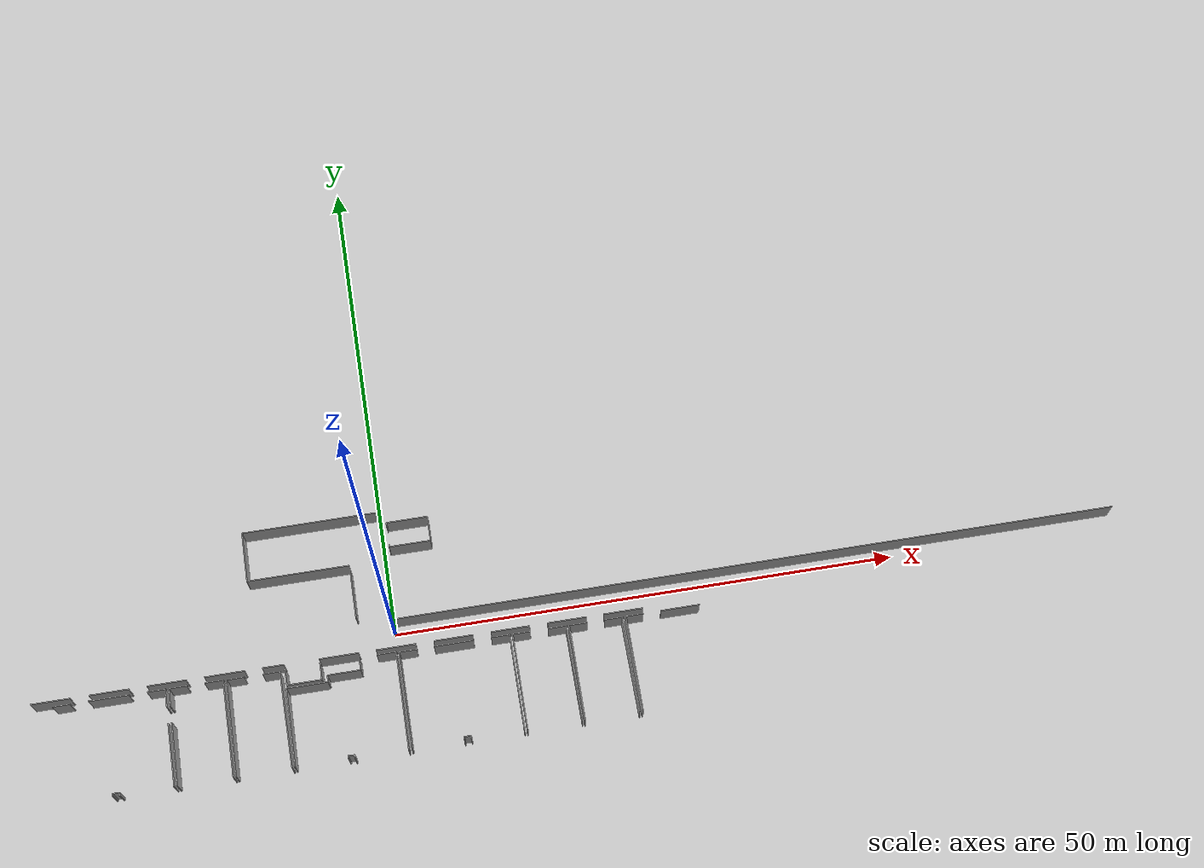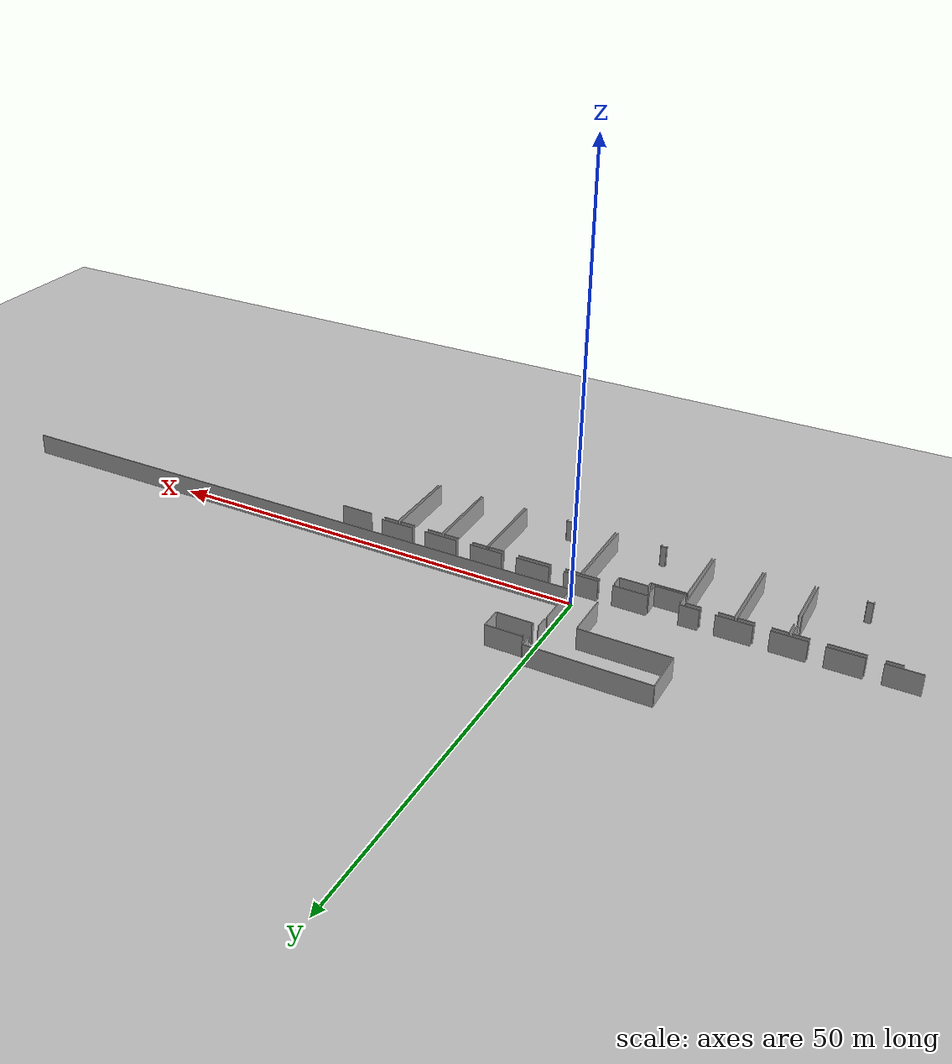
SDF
<sdf version="1.6">
 <world name="default">
  <model name="ground_plane">
   <static>1</static>
   <link name="link">
    <collision name="collision">
     <geometry><plane><normal>0 0 1</normal><size>100 100</size></plane></geometry>
     <surface><friction><ode><mu>100</mu><mu2>50</mu2></ode></friction></surface>
    </collision>
    <visual name="visual">
     <cast_shadows>0</cast_shadows>
     <geometry><plane><normal>0 0 1</normal><size>100 100</size></plane></geometry>
     <material>
      <script><uri>file://media/materials/scripts/gazebo.material</uri><name>Gazebo/Grey</name></script>
     </material>
    </visual>
   </link>
  </model>
  <model name="0510045906_A_40_1_104">
   <static>1</static>
   <link name="Wall_2">
    <collision name="Wall_2_Collision">
     <geometry><box><size>72.7622916997 0.1 2.5</size></box></geometry>
     <pose>36.3811458499 0 1.25 0 0 0</pose>
    </collision>
    <visual name="Wall_2_Visual">
     <pose>36.3811458499 0 1.25 0 0 0</pose>
     <geometry><box><size>72.7622916997 0.1 2.5</size></box></geometry>
     <material>
      <script><uri>file://media/materials/scripts/gazebo.material</uri><name>Gazebo/Grey</name></script>
      <ambient>1 1 1 1</ambient>
     </material>
    </visual>
    <pose>83.4841453738 -11.3094429456 0 0 0 0.0</pose>
   </link>
   <link name="Wall_12">
    <collision name="Wall_12_Collision">
     <geometry><box><size>3.91379146167 0.1 2.5</size></box></geometry>
     <pose>1.95689573084 0 1.25 0 0 0</pose>
    </collision>
    <visual name="Wall_12_Visual">
     <pose>1.95689573084 0 1.25 0 0 0</pose>
     <geometry><box><size>3.91379146167 0.1 2.5</size></box></geometry>
     <material>
      <script><uri>file://media/materials/scripts/gazebo.material</uri><name>Gazebo/Grey</name></script>
      <ambient>1 1 1 1</ambient>
     </material>
    </visual>
    <pose>108.021202984 -14.1445484844 0 0 0 3.14159265359</pose>
   </link>
   <link name="Wall_13">
    <collision name="Wall_13_Collision">
     <geometry><box><size>3.86173623234 0.1 2.5</size></box></geometry>
     <pose>1.93086811617 0 1.25 0 0 0</pose>
    </collision>
    <visual name="Wall_13_Visual">
     <pose>1.93086811617 0 1.25 0 0 0</pose>
     <geometry><box><size>3.86173623234 0.1 2.5</size></box></geometry>
     <material>
      <script><uri>file://media/materials/scripts/gazebo.material</uri><name>Gazebo/Grey</name></script>
      <ambient>1 1 1 1</ambient>
     </material>
    </visual>
    <pose>102.414473893 -14.1445484844 0 0 0 3.14159265359</pose>
   </link>
   <link name="Wall_14">
    <collision name="Wall_14_Collision">
     <geometry><box><size>3.8117124266 0.1 2.5</size></box></geometry>
     <pose>1.9058562133 0 1.25 0 0 0</pose>
    </collision>
    <visual name="Wall_14_Visual">
     <pose>1.9058562133 0 1.25 0 0 0</pose>
     <geometry><box><size>3.8117124266 0.1 2.5</size></box></geometry>
     <material>
      <script><uri>file://media/materials/scripts/gazebo.material</uri><name>Gazebo/Grey</name></script>
      <ambient>1 1 1 1</ambient>
     </material>
    </visual>
    <pose>96.7785430884 -14.1445484844 0 0 0 3.14159265359</pose>
   </link>
   <link name="Wall_15">
    <collision name="Wall_15_Collision">
     <geometry><box><size>3.86605300746 0.1 2.5</size></box></geometry>
     <pose>1.93302650373 0 1.25 0 0 0</pose>
    </collision>
    <visual name="Wall_15_Visual">
     <pose>1.93302650373 0 1.25 0 0 0</pose>
     <geometry><box><size>3.86605300746 0.1 2.5</size></box></geometry>
     <material>
      <script><uri>file://media/materials/scripts/gazebo.material</uri><name>Gazebo/Grey</name></script>
      <ambient>1 1 1 1</ambient>
     </material>
    </visual>
    <pose>91.1817171877 -14.1445484844 0 0 0 3.14159265359</pose>
   </link>
   <link name="Wall_16">
    <collision name="Wall_16_Collision">
     <geometry><box><size>3.89728614506 0.1 2.5</size></box></geometry>
     <pose>1.94864307253 0 1.25 0 0 0</pose>
    </collision>
    <visual name="Wall_16_Visual">
     <pose>1.94864307253 0 1.25 0 0 0</pose>
     <geometry><box><size>3.89728614506 0.1 2.5</size></box></geometry>
     <material>
      <script><uri>file://media/materials/scripts/gazebo.material</uri><name>Gazebo/Grey</name></script>
      <ambient>1 1 1 1</ambient>
     </material>
    </visual>
    <pose>85.5701634661 -14.1445484844 0 0 0 3.14159265359</pose>
   </link>
   <link name="Wall_17">
    <collision name="Wall_17_Collision">
     <geometry><box><size>3.87519441359 0.1 2.5</size></box></geometry>
     <pose>1.93759720679 0 1.25 0 0 0</pose>
    </collision>
    <visual name="Wall_17_Visual">
     <pose>1.93759720679 0 1.25 0 0 0</pose>
     <geometry><box><size>3.87519441359 0.1 2.5</size></box></geometry>
     <material>
      <script><uri>file://media/materials/scripts/gazebo.material</uri><name>Gazebo/Grey</name></script>
      <ambient>1 1 1 1</ambient>
     </material>
    </visual>
    <pose>79.9822250436 -14.1445484844 0 0 0 3.14159265359</pose>
   </link>
   <link name="Wall_18">
    <collision name="Wall_18_Collision">
     <geometry><box><size>2.12106014918 0.1 2.5</size></box></geometry>
     <pose>1.06053007459 0 1.25 0 0 0</pose>
    </collision>
    <visual name="Wall_18_Visual">
     <pose>1.06053007459 0 1.25 0 0 0</pose>
     <geometry><box><size>2.12106014918 0.1 2.5</size></box></geometry>
     <material>
      <script><uri>file://media/materials/scripts/gazebo.material</uri><name>Gazebo/Grey</name></script>
      <ambient>1 1 1 1</ambient>
     </material>
    </visual>
    <pose>72.6594508808 -14.1445484844 0 0 0 3.14159265359</pose>
   </link>
   <link name="Wall_19">
    <collision name="Wall_19_Collision">
     <geometry><box><size>3.90236470402 0.1 2.5</size></box></geometry>
     <pose>1.95118235201 0 1.25 0 0 0</pose>
    </collision>
    <visual name="Wall_19_Visual">
     <pose>1.95118235201 0 1.25 0 0 0</pose>
     <geometry><box><size>3.90236470402 0.1 2.5</size></box></geometry>
     <material>
      <script><uri>file://media/materials/scripts/gazebo.material</uri><name>Gazebo/Grey</name></script>
      <ambient>1 1 1 1</ambient>
     </material>
    </visual>
    <pose>68.8479923822 -14.1445484844 0 0 0 3.14159265359</pose>
   </link>
   <link name="Wall_20">
    <collision name="Wall_20_Collision">
     <geometry><box><size>3.81272813839 0.1 2.5</size></box></geometry>
     <pose>1.9063640692 0 1.25 0 0 0</pose>
    </collision>
    <visual name="Wall_20_Visual">
     <pose>1.9063640692 0 1.25 0 0 0</pose>
     <geometry><box><size>3.81272813839 0.1 2.5</size></box></geometry>
     <material>
      <script><uri>file://media/materials/scripts/gazebo.material</uri><name>Gazebo/Grey</name></script>
      <ambient>1 1 1 1</ambient>
     </material>
    </visual>
    <pose>63.1782891605 -14.1445484844 0 0 0 3.14159265359</pose>
   </link>
   <link name="Wall_21">
    <collision name="Wall_21_Collision">
     <geometry><box><size>3.87341691795 0.1 2.5</size></box></geometry>
     <pose>1.93670845897 0 1.25 0 0 0</pose>
    </collision>
    <visual name="Wall_21_Visual">
     <pose>1.93670845897 0 1.25 0 0 0</pose>
     <geometry><box><size>3.87341691795 0.1 2.5</size></box></geometry>
     <material>
      <script><uri>file://media/materials/scripts/gazebo.material</uri><name>Gazebo/Grey</name></script>
      <ambient>1 1 1 1</ambient>
     </material>
    </visual>
    <pose>57.6401206158 -14.1445484844 0 0 0 3.14159265359</pose>
   </link>
   <link name="Wall_22">
    <collision name="Wall_22_Collision">
     <geometry><box><size>3.79825424536 0.1 2.5</size></box></geometry>
     <pose>1.89912712268 0 1.25 0 0 0</pose>
    </collision>
    <visual name="Wall_22_Visual">
     <pose>1.89912712268 0 1.25 0 0 0</pose>
     <geometry><box><size>3.79825424536 0.1 2.5</size></box></geometry>
     <material>
      <script><uri>file://media/materials/scripts/gazebo.material</uri><name>Gazebo/Grey</name></script>
      <ambient>1 1 1 1</ambient>
     </material>
    </visual>
    <pose>51.9772734487 -14.1445484844 0 0 0 3.14159265359</pose>
   </link>
   <link name="Wall_92">
    <collision name="Wall_92_Collision">
     <geometry><box><size>0.28414537375 0.1 2.5</size></box></geometry>
     <pose>0.142072686875 0 1.25 0 0 0</pose>
    </collision>
    <visual name="Wall_92_Visual">
     <pose>0.142072686875 0 1.25 0 0 0</pose>
     <geometry><box><size>0.28414537375 0.1 2.5</size></box></geometry>
     <material>
      <script><uri>file://media/materials/scripts/gazebo.material</uri><name>Gazebo/Grey</name></script>
      <ambient>1 1 1 1</ambient>
     </material>
    </visual>
    <pose>56.0010157118 -24.3473734328 0 0 0 1.57079632679</pose>
   </link>
   <link name="Wall_93">
    <collision name="Wall_93_Collision">
     <geometry><box><size>0.649547690843 0.1 2.5</size></box></geometry>
     <pose>0.324773845421 0 1.25 0 0 0</pose>
    </collision>
    <visual name="Wall_93_Visual">
     <pose>0.324773845421 0 1.25 0 0 0</pose>
     <geometry><box><size>0.649547690843 0.1 2.5</size></box></geometry>
     <material>
      <script><uri>file://media/materials/scripts/gazebo.material</uri><name>Gazebo/Grey</name></script>
      <ambient>1 1 1 1</ambient>
     </material>
    </visual>
    <pose>56.0010157118 -24.063228059 0 0 0 3.14159265359</pose>
   </link>
   <link name="Wall_94">
    <collision name="Wall_94_Collision">
     <geometry><box><size>0.252658308205 0.1 2.5</size></box></geometry>
     <pose>0.126329154103 0 1.25 0 0 0</pose>
    </collision>
    <visual name="Wall_94_Visual">
     <pose>0.126329154103 0 1.25 0 0 0</pose>
     <geometry><box><size>0.252658308205 0.1 2.5</size></box></geometry>
     <material>
      <script><uri>file://media/materials/scripts/gazebo.material</uri><name>Gazebo/Grey</name></script>
      <ambient>1 1 1 1</ambient>
     </material>
    </visual>
    <pose>55.3514680209 -24.063228059 0 0 0 -1.57079632679</pose>
   </link>
   <link name="Wall_96">
    <collision name="Wall_96_Collision">
     <geometry><box><size>1.70334867481 0.1 2.5</size></box></geometry>
     <pose>0.851674337407 0 1.25 0 0 0</pose>
    </collision>
    <visual name="Wall_96_Visual">
     <pose>0.851674337407 0 1.25 0 0 0</pose>
     <geometry><box><size>1.70334867481 0.1 2.5</size></box></geometry>
     <material>
      <script><uri>file://media/materials/scripts/gazebo.material</uri><name>Gazebo/Grey</name></script>
      <ambient>1 1 1 1</ambient>
     </material>
    </visual>
    <pose>50.2556419616 -14.7085224568 0 0 0 0.0</pose>
   </link>
   <link name="Wall_97">
    <collision name="Wall_97_Collision">
     <geometry><box><size>3.88789081098 0.1 2.5</size></box></geometry>
     <pose>1.94394540549 0 1.25 0 0 0</pose>
    </collision>
    <visual name="Wall_97_Visual">
     <pose>1.94394540549 0 1.25 0 0 0</pose>
     <geometry><box><size>3.88789081098 0.1 2.5</size></box></geometry>
     <material>
      <script><uri>file://media/materials/scripts/gazebo.material</uri><name>Gazebo/Grey</name></script>
      <ambient>1 1 1 1</ambient>
     </material>
    </visual>
    <pose>53.7202348834 -14.7085224568 0 0 0 0.0</pose>
   </link>
   <link name="Wall_98">
    <collision name="Wall_98_Collision">
     <geometry><box><size>1.75311855261 0.1 2.5</size></box></geometry>
     <pose>0.876559276305 0 1.25 0 0 0</pose>
    </collision>
    <visual name="Wall_98_Visual">
     <pose>0.876559276305 0 1.25 0 0 0</pose>
     <geometry><box><size>1.75311855261 0.1 2.5</size></box></geometry>
     <material>
      <script><uri>file://media/materials/scripts/gazebo.material</uri><name>Gazebo/Grey</name></script>
      <ambient>1 1 1 1</ambient>
     </material>
    </visual>
    <pose>59.3457546421 -14.7085224568 0 0 0 0.0</pose>
   </link>
   <link name="Wall_99">
    <collision name="Wall_99_Collision">
     <geometry><box><size>1.78866846532 0.1 2.5</size></box></geometry>
     <pose>0.894334232661 0 1.25 0 0 0</pose>
    </collision>
    <visual name="Wall_99_Visual">
     <pose>0.894334232661 0 1.25 0 0 0</pose>
     <geometry><box><size>1.78866846532 0.1 2.5</size></box></geometry>
     <material>
      <script><uri>file://media/materials/scripts/gazebo.material</uri><name>Gazebo/Grey</name></script>
      <ambient>1 1 1 1</ambient>
     </material>
    </visual>
    <pose>61.0988731947 -14.7085224568 0 0 0 -1.57079632679</pose>
   </link>
   <link name="Wall_100">
    <collision name="Wall_100_Collision">
     <geometry><box><size>6.25143440466 0.1 2.5</size></box></geometry>
     <pose>3.12571720233 0 1.25 0 0 0</pose>
    </collision>
    <visual name="Wall_100_Visual">
     <pose>3.12571720233 0 1.25 0 0 0</pose>
     <geometry><box><size>6.25143440466 0.1 2.5</size></box></geometry>
     <material>
      <script><uri>file://media/materials/scripts/gazebo.material</uri><name>Gazebo/Grey</name></script>
      <ambient>1 1 1 1</ambient>
     </material>
    </visual>
    <pose>61.0988731947 -18.0961752103 0 0 0 -1.56210371936</pose>
   </link>
   <link name="Wall_101">
    <collision name="Wall_101_Collision">
     <geometry><box><size>6.21310903031 0.1 2.5</size></box></geometry>
     <pose>3.10655451516 0 1.25 0 0 0</pose>
    </collision>
    <visual name="Wall_101_Visual">
     <pose>3.10655451516 0 1.25 0 0 0</pose>
     <geometry><box><size>6.21310903031 0.1 2.5</size></box></geometry>
     <material>
      <script><uri>file://media/materials/scripts/gazebo.material</uri><name>Gazebo/Grey</name></script>
      <ambient>1 1 1 1</ambient>
     </material>
    </visual>
    <pose>61.4457387716 -24.3207109983 0 0 0 1.57079632679</pose>
   </link>
   <link name="Wall_102">
    <collision name="Wall_102_Collision">
     <geometry><box><size>1.81152198064 0.1 2.5</size></box></geometry>
     <pose>0.905760990319 0 1.25 0 0 0</pose>
    </collision>
    <visual name="Wall_102_Visual">
     <pose>0.905760990319 0 1.25 0 0 0</pose>
     <geometry><box><size>1.81152198064 0.1 2.5</size></box></geometry>
     <material>
      <script><uri>file://media/materials/scripts/gazebo.material</uri><name>Gazebo/Grey</name></script>
      <ambient>1 1 1 1</ambient>
     </material>
    </visual>
    <pose>61.4457387716 -16.526900492 0 0 0 1.57079632679</pose>
   </link>
   <link name="Wall_103">
    <collision name="Wall_103_Collision">
     <geometry><box><size>1.74677035391 0.1 2.5</size></box></geometry>
     <pose>0.873385176956 0 1.25 0 0 0</pose>
    </collision>
    <visual name="Wall_103_Visual">
     <pose>0.873385176956 0 1.25 0 0 0</pose>
     <geometry><box><size>1.74677035391 0.1 2.5</size></box></geometry>
     <material>
      <script><uri>file://media/materials/scripts/gazebo.material</uri><name>Gazebo/Grey</name></script>
      <ambient>1 1 1 1</ambient>
     </material>
    </visual>
    <pose>61.4457387716 -14.7153785113 0 0 0 0.0</pose>
   </link>
   <link name="Wall_104">
    <collision name="Wall_104_Collision">
     <geometry><box><size>1.80491985399 0.1 2.5</size></box></geometry>
     <pose>0.902459926996 0 1.25 0 0 0</pose>
    </collision>
    <visual name="Wall_104_Visual">
     <pose>0.902459926996 0 1.25 0 0 0</pose>
     <geometry><box><size>1.80491985399 0.1 2.5</size></box></geometry>
     <material>
      <script><uri>file://media/materials/scripts/gazebo.material</uri><name>Gazebo/Grey</name></script>
      <ambient>1 1 1 1</ambient>
     </material>
    </visual>
    <pose>64.8978892239 -14.7153785113 0 0 0 0.0</pose>
   </link>
   <link name="Wall_105">
    <collision name="Wall_105_Collision">
     <geometry><box><size>9.60546540428 0.1 2.5</size></box></geometry>
     <pose>4.80273270214 0 1.25 0 0 0</pose>
    </collision>
    <visual name="Wall_105_Visual">
     <pose>4.80273270214 0 1.25 0 0 0</pose>
     <geometry><box><size>9.60546540428 0.1 2.5</size></box></geometry>
     <material>
      <script><uri>file://media/materials/scripts/gazebo.material</uri><name>Gazebo/Grey</name></script>
      <ambient>1 1 1 1</ambient>
     </material>
    </visual>
    <pose>66.7028090779 -14.7153785113 0 0 0 -1.56553558277</pose>
   </link>
   <link name="Wall_106">
    <collision name="Wall_106_Collision">
     <geometry><box><size>9.5936518013 0.1 2.5</size></box></geometry>
     <pose>4.79682590065 0 1.25 0 0 0</pose>
    </collision>
    <visual name="Wall_106_Visual">
     <pose>4.79682590065 0 1.25 0 0 0</pose>
     <geometry><box><size>9.5936518013 0.1 2.5</size></box></geometry>
     <material>
      <script><uri>file://media/materials/scripts/gazebo.material</uri><name>Gazebo/Grey</name></script>
      <ambient>1 1 1 1</ambient>
     </material>
    </visual>
    <pose>67.0301222028 -24.3397555944 0 0 0 1.57079632679</pose>
   </link>
   <link name="Wall_107">
    <collision name="Wall_107_Collision">
     <geometry><box><size>1.71477543247 0.1 2.5</size></box></geometry>
     <pose>0.857387716236 0 1.25 0 0 0</pose>
    </collision>
    <visual name="Wall_107_Visual">
     <pose>0.857387716236 0 1.25 0 0 0</pose>
     <geometry><box><size>1.71477543247 0.1 2.5</size></box></geometry>
     <material>
      <script><uri>file://media/materials/scripts/gazebo.material</uri><name>Gazebo/Grey</name></script>
      <ambient>1 1 1 1</ambient>
     </material>
    </visual>
    <pose>67.0301222028 -14.746103793 0 0 0 0.0</pose>
   </link>
   <link name="Wall_108">
    <collision name="Wall_108_Collision">
     <geometry><box><size>1.67947944771 0.1 2.5</size></box></geometry>
     <pose>0.839739723853 0 1.25 0 0 0</pose>
    </collision>
    <visual name="Wall_108_Visual">
     <pose>0.839739723853 0 1.25 0 0 0</pose>
     <geometry><box><size>1.67947944771 0.1 2.5</size></box></geometry>
     <material>
      <script><uri>file://media/materials/scripts/gazebo.material</uri><name>Gazebo/Grey</name></script>
      <ambient>1 1 1 1</ambient>
     </material>
    </visual>
    <pose>70.5193461355 -14.746103793 0 0 0 0.0</pose>
   </link>
   <link name="Wall_109">
    <collision name="Wall_109_Collision">
     <geometry><box><size>9.59495184635 0.1 2.5</size></box></geometry>
     <pose>4.79747592318 0 1.25 0 0 0</pose>
    </collision>
    <visual name="Wall_109_Visual">
     <pose>4.79747592318 0 1.25 0 0 0</pose>
     <geometry><box><size>9.59495184635 0.1 2.5</size></box></geometry>
     <material>
      <script><uri>file://media/materials/scripts/gazebo.material</uri><name>Gazebo/Grey</name></script>
      <ambient>1 1 1 1</ambient>
     </material>
    </visual>
    <pose>72.1988255832 -14.746103793 0 0 0 -1.5543345123</pose>
   </link>
   <link name="Wall_110">
    <collision name="Wall_110_Collision">
     <geometry><box><size>0.284653229646 0.1 2.5</size></box></geometry>
     <pose>0.142326614823 0 1.25 0 0 0</pose>
    </collision>
    <visual name="Wall_110_Visual">
     <pose>0.142326614823 0 1.25 0 0 0</pose>
     <geometry><box><size>0.284653229646 0.1 2.5</size></box></geometry>
     <material>
      <script><uri>file://media/materials/scripts/gazebo.material</uri><name>Gazebo/Grey</name></script>
      <ambient>1 1 1 1</ambient>
     </material>
    </visual>
    <pose>78.3784161244 -24.3648944612 0 0 0 1.57079632679</pose>
   </link>
   <link name="Wall_111">
    <collision name="Wall_111_Collision">
     <geometry><box><size>0.608919219172 0.1 2.5</size></box></geometry>
     <pose>0.304459609586 0 1.25 0 0 0</pose>
    </collision>
    <visual name="Wall_111_Visual">
     <pose>0.304459609586 0 1.25 0 0 0</pose>
     <geometry><box><size>0.608919219172 0.1 2.5</size></box></geometry>
     <material>
      <script><uri>file://media/materials/scripts/gazebo.material</uri><name>Gazebo/Grey</name></script>
      <ambient>1 1 1 1</ambient>
     </material>
    </visual>
    <pose>78.3784161244 -24.0802412316 0 0 0 3.14159265359</pose>
   </link>
   <link name="Wall_112">
    <collision name="Wall_112_Collision">
     <geometry><box><size>0.253420092049 0.1 2.5</size></box></geometry>
     <pose>0.126710046024 0 1.25 0 0 0</pose>
    </collision>
    <visual name="Wall_112_Visual">
     <pose>0.126710046024 0 1.25 0 0 0</pose>
     <geometry><box><size>0.253420092049 0.1 2.5</size></box></geometry>
     <material>
      <script><uri>file://media/materials/scripts/gazebo.material</uri><name>Gazebo/Grey</name></script>
      <ambient>1 1 1 1</ambient>
     </material>
    </visual>
    <pose>77.7694969053 -24.0802412316 0 0 0 -1.57079632679</pose>
   </link>
   <link name="Wall_113">
    <collision name="Wall_113_Collision">
     <geometry><box><size>7.78492302809 0.1 2.5</size></box></geometry>
     <pose>3.89246151405 0 1.25 0 0 0</pose>
    </collision>
    <visual name="Wall_113_Visual">
     <pose>3.89246151405 0 1.25 0 0 0</pose>
     <geometry><box><size>7.78492302809 0.1 2.5</size></box></geometry>
     <material>
      <script><uri>file://media/materials/scripts/gazebo.material</uri><name>Gazebo/Grey</name></script>
      <ambient>1 1 1 1</ambient>
     </material>
    </visual>
    <pose>72.6477701952 -24.3336613236 0 0 0 1.57079632679</pose>
   </link>
   <link name="Wall_114">
    <collision name="Wall_114_Collision">
     <geometry><box><size>4.0521821933 0.1 2.5</size></box></geometry>
     <pose>2.02609109665 0 1.25 0 0 0</pose>
    </collision>
    <visual name="Wall_114_Visual">
     <pose>2.02609109665 0 1.25 0 0 0</pose>
     <geometry><box><size>4.0521821933 0.1 2.5</size></box></geometry>
     <material>
      <script><uri>file://media/materials/scripts/gazebo.material</uri><name>Gazebo/Grey</name></script>
      <ambient>1 1 1 1</ambient>
     </material>
    </visual>
    <pose>72.6477701952 -16.5487382955 0 0 0 0.0</pose>
   </link>
   <link name="Wall_115">
    <collision name="Wall_115_Collision">
     <geometry><box><size>0.66960799873 0.1 2.5</size></box></geometry>
     <pose>0.334803999365 0 1.25 0 0 0</pose>
    </collision>
    <visual name="Wall_115_Visual">
     <pose>0.334803999365 0 1.25 0 0 0</pose>
     <geometry><box><size>0.66960799873 0.1 2.5</size></box></geometry>
     <material>
      <script><uri>file://media/materials/scripts/gazebo.material</uri><name>Gazebo/Grey</name></script>
      <ambient>1 1 1 1</ambient>
     </material>
    </visual>
    <pose>76.6999523885 -16.5487382955 0 0 0 1.57079632679</pose>
   </link>
   <link name="Wall_116">
    <collision name="Wall_116_Collision">
     <geometry><box><size>3.2492620219 0.1 2.5</size></box></geometry>
     <pose>1.62463101095 0 1.25 0 0 0</pose>
    </collision>
    <visual name="Wall_116_Visual">
     <pose>1.62463101095 0 1.25 0 0 0</pose>
     <geometry><box><size>3.2492620219 0.1 2.5</size></box></geometry>
     <material>
      <script><uri>file://media/materials/scripts/gazebo.material</uri><name>Gazebo/Grey</name></script>
      <ambient>1 1 1 1</ambient>
     </material>
    </visual>
    <pose>76.6999523885 -15.8791302968 0 0 0 0.0</pose>
   </link>
   <link name="Wall_117">
    <collision name="Wall_117_Collision">
     <geometry><box><size>1.26252975718 0.1 2.5</size></box></geometry>
     <pose>0.631264878591 0 1.25 0 0 0</pose>
    </collision>
    <visual name="Wall_117_Visual">
     <pose>0.631264878591 0 1.25 0 0 0</pose>
     <geometry><box><size>1.26252975718 0.1 2.5</size></box></geometry>
     <material>
      <script><uri>file://media/materials/scripts/gazebo.material</uri><name>Gazebo/Grey</name></script>
      <ambient>1 1 1 1</ambient>
     </material>
    </visual>
    <pose>79.9492144104 -15.8791302968 0 0 0 1.57079632679</pose>
   </link>
   <link name="Wall_118">
    <collision name="Wall_118_Collision">
     <geometry><box><size>1.90445960959 0.1 2.5</size></box></geometry>
     <pose>0.952229804793 0 1.25 0 0 0</pose>
    </collision>
    <visual name="Wall_118_Visual">
     <pose>0.952229804793 0 1.25 0 0 0</pose>
     <geometry><box><size>1.90445960959 0.1 2.5</size></box></geometry>
     <material>
      <script><uri>file://media/materials/scripts/gazebo.material</uri><name>Gazebo/Grey</name></script>
      <ambient>1 1 1 1</ambient>
     </material>
    </visual>
    <pose>81.663481987 -14.6166005396 0 0 0 0.0</pose>
   </link>
   <link name="Wall_119">
    <collision name="Wall_119_Collision">
     <geometry><box><size>9.74837033119 0.1 2.5</size></box></geometry>
     <pose>4.87418516559 0 1.25 0 0 0</pose>
    </collision>
    <visual name="Wall_119_Visual">
     <pose>4.87418516559 0 1.25 0 0 0</pose>
     <geometry><box><size>9.74837033119 0.1 2.5</size></box></geometry>
     <material>
      <script><uri>file://media/materials/scripts/gazebo.material</uri><name>Gazebo/Grey</name></script>
      <ambient>1 1 1 1</ambient>
     </material>
    </visual>
    <pose>83.5679415966 -14.6166005396 0 0 0 -1.57475567052</pose>
   </link>
   <link name="Wall_120">
    <collision name="Wall_120_Collision">
     <geometry><box><size>3.39196952865 0.1 2.5</size></box></geometry>
     <pose>1.69598476432 0 1.25 0 0 0</pose>
    </collision>
    <visual name="Wall_120_Visual">
     <pose>1.69598476432 0 1.25 0 0 0</pose>
     <geometry><box><size>3.39196952865 0.1 2.5</size></box></geometry>
     <material>
      <script><uri>file://media/materials/scripts/gazebo.material</uri><name>Gazebo/Grey</name></script>
      <ambient>1 1 1 1</ambient>
     </material>
    </visual>
    <pose>72.7368989049 -16.2305665767 0 0 0 0.0</pose>
   </link>
   <link name="Wall_121">
    <collision name="Wall_121_Collision">
     <geometry><box><size>1.67973337565 0.1 2.5</size></box></geometry>
     <pose>0.839866687827 0 1.25 0 0 0</pose>
    </collision>
    <visual name="Wall_121_Visual">
     <pose>0.839866687827 0 1.25 0 0 0</pose>
     <geometry><box><size>1.67973337565 0.1 2.5</size></box></geometry>
     <material>
      <script><uri>file://media/materials/scripts/gazebo.material</uri><name>Gazebo/Grey</name></script>
      <ambient>1 1 1 1</ambient>
     </material>
    </visual>
    <pose>76.1288684336 -16.2305665767 0 0 0 1.57079632679</pose>
   </link>
   <link name="Wall_122">
    <collision name="Wall_122_Collision">
     <geometry><box><size>1.6798786438 0.1 2.5</size></box></geometry>
     <pose>0.839939321899 0 1.25 0 0 0</pose>
    </collision>
    <visual name="Wall_122_Visual">
     <pose>0.839939321899 0 1.25 0 0 0</pose>
     <geometry><box><size>1.6798786438 0.1 2.5</size></box></geometry>
     <material>
      <script><uri>file://media/materials/scripts/gazebo.material</uri><name>Gazebo/Grey</name></script>
      <ambient>1 1 1 1</ambient>
     </material>
    </visual>
    <pose>72.7148071735 -14.5508332011 0 0 0 -1.55764515759</pose>
   </link>
   <link name="Wall_123">
    <collision name="Wall_123_Collision">
     <geometry><box><size>0.282367878115 0.1 2.5</size></box></geometry>
     <pose>0.141183939057 0 1.25 0 0 0</pose>
    </collision>
    <visual name="Wall_123_Visual">
     <pose>0.141183939057 0 1.25 0 0 0</pose>
     <geometry><box><size>0.282367878115 0.1 2.5</size></box></geometry>
     <material>
      <script><uri>file://media/materials/scripts/gazebo.material</uri><name>Gazebo/Grey</name></script>
      <ambient>1 1 1 1</ambient>
     </material>
    </visual>
    <pose>89.5880653864 -24.3181717188 0 0 0 1.57079632679</pose>
   </link>
   <link name="Wall_124">
    <collision name="Wall_124_Collision">
     <geometry><box><size>0.66960799873 0.1 2.5</size></box></geometry>
     <pose>0.334803999365 0 1.25 0 0 0</pose>
    </collision>
    <visual name="Wall_124_Visual">
     <pose>0.334803999365 0 1.25 0 0 0</pose>
     <geometry><box><size>0.66960799873 0.1 2.5</size></box></geometry>
     <material>
      <script><uri>file://media/materials/scripts/gazebo.material</uri><name>Gazebo/Grey</name></script>
      <ambient>1 1 1 1</ambient>
     </material>
    </visual>
    <pose>89.5880653864 -24.0358038407 0 0 0 3.14159265359</pose>
   </link>
   <link name="Wall_125">
    <collision name="Wall_125_Collision">
     <geometry><box><size>0.296333915252 0.1 2.5</size></box></geometry>
     <pose>0.148166957626 0 1.25 0 0 0</pose>
    </collision>
    <visual name="Wall_125_Visual">
     <pose>0.148166957626 0 1.25 0 0 0</pose>
     <geometry><box><size>0.296333915252 0.1 2.5</size></box></geometry>
     <material>
      <script><uri>file://media/materials/scripts/gazebo.material</uri><name>Gazebo/Grey</name></script>
      <ambient>1 1 1 1</ambient>
     </material>
    </visual>
    <pose>88.9184573877 -24.0358038407 0 0 0 -1.57079632679</pose>
   </link>
   <link name="Wall_126">
    <collision name="Wall_126_Collision">
     <geometry><box><size>9.64469131884 0.1 2.5</size></box></geometry>
     <pose>4.82234565942 0 1.25 0 0 0</pose>
    </collision>
    <visual name="Wall_126_Visual">
     <pose>4.82234565942 0 1.25 0 0 0</pose>
     <geometry><box><size>9.64469131884 0.1 2.5</size></box></geometry>
     <material>
      <script><uri>file://media/materials/scripts/gazebo.material</uri><name>Gazebo/Grey</name></script>
      <ambient>1 1 1 1</ambient>
     </material>
    </visual>
    <pose>83.843961276 -24.3321377559 0 0 0 1.57079632679</pose>
   </link>
   <link name="Wall_127">
    <collision name="Wall_127_Collision">
     <geometry><box><size>1.74321536264 0.1 2.5</size></box></geometry>
     <pose>0.87160768132 0 1.25 0 0 0</pose>
    </collision>
    <visual name="Wall_127_Visual">
     <pose>0.87160768132 0 1.25 0 0 0</pose>
     <geometry><box><size>1.74321536264 0.1 2.5</size></box></geometry>
     <material>
      <script><uri>file://media/materials/scripts/gazebo.material</uri><name>Gazebo/Grey</name></script>
      <ambient>1 1 1 1</ambient>
     </material>
    </visual>
    <pose>83.843961276 -14.6874464371 0 0 0 0.0</pose>
   </link>
   <link name="Wall_128">
    <collision name="Wall_128_Collision">
     <geometry><box><size>3.89043009046 0.1 2.5</size></box></geometry>
     <pose>1.94521504523 0 1.25 0 0 0</pose>
    </collision>
    <visual name="Wall_128_Visual">
     <pose>1.94521504523 0 1.25 0 0 0</pose>
     <geometry><box><size>3.89043009046 0.1 2.5</size></box></geometry>
     <material>
      <script><uri>file://media/materials/scripts/gazebo.material</uri><name>Gazebo/Grey</name></script>
      <ambient>1 1 1 1</ambient>
     </material>
    </visual>
    <pose>87.2783367719 -14.6874464371 0 0 0 0.0</pose>
   </link>
   <link name="Wall_129">
    <collision name="Wall_129_Collision">
     <geometry><box><size>1.8224408824 0.1 2.5</size></box></geometry>
     <pose>0.9112204412 0 1.25 0 0 0</pose>
    </collision>
    <visual name="Wall_129_Visual">
     <pose>0.9112204412 0 1.25 0 0 0</pose>
     <geometry><box><size>1.8224408824 0.1 2.5</size></box></geometry>
     <material>
      <script><uri>file://media/materials/scripts/gazebo.material</uri><name>Gazebo/Grey</name></script>
      <ambient>1 1 1 1</ambient>
     </material>
    </visual>
    <pose>92.9033486748 -14.6874464371 0 0 0 0.0</pose>
   </link>
   <link name="Wall_130">
    <collision name="Wall_130_Collision">
     <geometry><box><size>9.63072915151 0.1 2.5</size></box></geometry>
     <pose>4.81536457576 0 1.25 0 0 0</pose>
    </collision>
    <visual name="Wall_130_Visual">
     <pose>4.81536457576 0 1.25 0 0 0</pose>
     <geometry><box><size>9.63072915151 0.1 2.5</size></box></geometry>
     <material>
      <script><uri>file://media/materials/scripts/gazebo.material</uri><name>Gazebo/Grey</name></script>
      <ambient>1 1 1 1</ambient>
     </material>
    </visual>
    <pose>94.7257895572 -14.6874464371 0 0 0 -1.56989986805</pose>
   </link>
   <link name="Wall_131">
    <collision name="Wall_131_Collision">
     <geometry><box><size>9.62666243453 0.1 2.5</size></box></geometry>
     <pose>4.81333121727 0 1.25 0 0 0</pose>
    </collision>
    <visual name="Wall_131_Visual">
     <pose>4.81333121727 0 1.25 0 0 0</pose>
     <geometry><box><size>9.62666243453 0.1 2.5</size></box></geometry>
     <material>
      <script><uri>file://media/materials/scripts/gazebo.material</uri><name>Gazebo/Grey</name></script>
      <ambient>1 1 1 1</ambient>
     </material>
    </visual>
    <pose>95.0112045707 -24.3202031424 0 0 0 1.57079632679</pose>
   </link>
   <link name="Wall_132">
    <collision name="Wall_132_Collision">
     <geometry><box><size>1.74550071417 0.1 2.5</size></box></geometry>
     <pose>0.872750357086 0 1.25 0 0 0</pose>
    </collision>
    <visual name="Wall_132_Visual">
     <pose>0.872750357086 0 1.25 0 0 0</pose>
     <geometry><box><size>1.74550071417 0.1 2.5</size></box></geometry>
     <material>
      <script><uri>file://media/materials/scripts/gazebo.material</uri><name>Gazebo/Grey</name></script>
      <ambient>1 1 1 1</ambient>
     </material>
    </visual>
    <pose>95.0112045707 -14.6935407078 0 0 0 0.0</pose>
   </link>
   <link name="Wall_133">
    <collision name="Wall_133_Collision">
     <geometry><box><size>1.77851134741 0.1 2.5</size></box></geometry>
     <pose>0.889255673703 0 1.25 0 0 0</pose>
    </collision>
    <visual name="Wall_133_Visual">
     <pose>0.889255673703 0 1.25 0 0 0</pose>
     <geometry><box><size>1.77851134741 0.1 2.5</size></box></geometry>
     <material>
      <script><uri>file://media/materials/scripts/gazebo.material</uri><name>Gazebo/Grey</name></script>
      <ambient>1 1 1 1</ambient>
     </material>
    </visual>
    <pose>98.5240438026 -14.6935407078 0 0 0 0.0</pose>
   </link>
   <link name="Wall_134">
    <collision name="Wall_134_Collision">
     <geometry><box><size>9.62690297017 0.1 2.5</size></box></geometry>
     <pose>4.81345148509 0 1.25 0 0 0</pose>
    </collision>
    <visual name="Wall_134_Visual">
     <pose>4.81345148509 0 1.25 0 0 0</pose>
     <geometry><box><size>9.62690297017 0.1 2.5</size></box></geometry>
     <material>
      <script><uri>file://media/materials/scripts/gazebo.material</uri><name>Gazebo/Grey</name></script>
      <ambient>1 1 1 1</ambient>
     </material>
    </visual>
    <pose>100.30255515 -14.6935407078 0 0 0 -1.56372725619</pose>
   </link>
   <link name="Wall_135">
    <collision name="Wall_135_Collision">
     <geometry><box><size>9.61980637994 0.1 2.5</size></box></geometry>
     <pose>4.80990318997 0 1.25 0 0 0</pose>
    </collision>
    <visual name="Wall_135_Visual">
     <pose>4.80990318997 0 1.25 0 0 0</pose>
     <geometry><box><size>9.61980637994 0.1 2.5</size></box></geometry>
     <material>
      <script><uri>file://media/materials/scripts/gazebo.material</uri><name>Gazebo/Grey</name></script>
      <ambient>1 1 1 1</ambient>
     </material>
    </visual>
    <pose>100.598889065 -24.3326456118 0 0 0 1.57079632679</pose>
   </link>
   <link name="Wall_136">
    <collision name="Wall_136_Collision">
     <geometry><box><size>1.78028884304 0.1 2.5</size></box></geometry>
     <pose>0.89014442152 0 1.25 0 0 0</pose>
    </collision>
    <visual name="Wall_136_Visual">
     <pose>0.89014442152 0 1.25 0 0 0</pose>
     <geometry><box><size>1.78028884304 0.1 2.5</size></box></geometry>
     <material>
      <script><uri>file://media/materials/scripts/gazebo.material</uri><name>Gazebo/Grey</name></script>
      <ambient>1 1 1 1</ambient>
     </material>
    </visual>
    <pose>100.598889065 -14.7128392319 0 0 0 0.0</pose>
   </link>
   <link name="Wall_137">
    <collision name="Wall_137_Collision">
     <geometry><box><size>1.76810030154 0.1 2.5</size></box></geometry>
     <pose>0.88405015077 0 1.25 0 0 0</pose>
    </collision>
    <visual name="Wall_137_Visual">
     <pose>0.88405015077 0 1.25 0 0 0</pose>
     <geometry><box><size>1.76810030154 0.1 2.5</size></box></geometry>
     <material>
      <script><uri>file://media/materials/scripts/gazebo.material</uri><name>Gazebo/Grey</name></script>
      <ambient>1 1 1 1</ambient>
     </material>
    </visual>
    <pose>104.091667989 -14.7128392319 0 0 0 0.0</pose>
   </link>
   <link name="Wall_138">
    <collision name="Wall_138_Collision">
     <geometry><box><size>9.6202979791 0.1 2.5</size></box></geometry>
     <pose>4.81014898955 0 1.25 0 0 0</pose>
    </collision>
    <visual name="Wall_138_Visual">
     <pose>4.81014898955 0 1.25 0 0 0</pose>
     <geometry><box><size>9.6202979791 0.1 2.5</size></box></geometry>
     <material>
      <script><uri>file://media/materials/scripts/gazebo.material</uri><name>Gazebo/Grey</name></script>
      <ambient>1 1 1 1</ambient>
     </material>
    </visual>
    <pose>105.859768291 -14.7128392319 0 0 0 -1.56068686232</pose>
   </link>
   <link name="Wall_142">
    <collision name="Wall_142_Collision">
     <geometry><box><size>9.62234565942 0.1 2.5</size></box></geometry>
     <pose>4.81117282971 0 1.25 0 0 0</pose>
    </collision>
    <visual name="Wall_142_Visual">
     <pose>4.81117282971 0 1.25 0 0 0</pose>
     <geometry><box><size>9.62234565942 0.1 2.5</size></box></geometry>
     <material>
      <script><uri>file://media/materials/scripts/gazebo.material</uri><name>Gazebo/Grey</name></script>
      <ambient>1 1 1 1</ambient>
     </material>
    </visual>
    <pose>106.235835582 -24.3207109983 0 0 0 1.57079632679</pose>
   </link>
   <link name="Wall_143">
    <collision name="Wall_143_Collision">
     <geometry><box><size>1.71833042374 0.1 2.5</size></box></geometry>
     <pose>0.859165211871 0 1.25 0 0 0</pose>
    </collision>
    <visual name="Wall_143_Visual">
     <pose>0.859165211871 0 1.25 0 0 0</pose>
     <geometry><box><size>1.71833042374 0.1 2.5</size></box></geometry>
     <material>
      <script><uri>file://media/materials/scripts/gazebo.material</uri><name>Gazebo/Grey</name></script>
      <ambient>1 1 1 1</ambient>
     </material>
    </visual>
    <pose>106.235835582 -14.6983653388 0 0 0 0.0</pose>
   </link>
   <link name="Wall_144">
    <collision name="Wall_144_Collision">
     <geometry><box><size>3.85665767339 0.1 2.5</size></box></geometry>
     <pose>1.92832883669 0 1.25 0 0 0</pose>
    </collision>
    <visual name="Wall_144_Visual">
     <pose>1.92832883669 0 1.25 0 0 0</pose>
     <geometry><box><size>3.85665767339 0.1 2.5</size></box></geometry>
     <material>
      <script><uri>file://media/materials/scripts/gazebo.material</uri><name>Gazebo/Grey</name></script>
      <ambient>1 1 1 1</ambient>
     </material>
    </visual>
    <pose>109.701190287 -14.6983653388 0 0 0 0.0</pose>
   </link>
   <link name="Wall_204">
    <collision name="Wall_204_Collision">
     <geometry><box><size>5.04478654182 0.1 2.5</size></box></geometry>
     <pose>2.52239327091 0 1.25 0 0 0</pose>
    </collision>
    <visual name="Wall_204_Visual">
     <pose>2.52239327091 0 1.25 0 0 0</pose>
     <geometry><box><size>5.04478654182 0.1 2.5</size></box></geometry>
     <material>
      <script><uri>file://media/materials/scripts/gazebo.material</uri><name>Gazebo/Grey</name></script>
      <ambient>1 1 1 1</ambient>
     </material>
    </visual>
    <pose>83.5260434852 -10.5258212982 0 0 0 1.57079632679</pose>
   </link>
   <link name="Wall_205">
    <collision name="Wall_205_Collision">
     <geometry><box><size>4.97724170767 0.1 2.5</size></box></geometry>
     <pose>2.48862085383 0 1.25 0 0 0</pose>
    </collision>
    <visual name="Wall_205_Visual">
     <pose>2.48862085383 0 1.25 0 0 0</pose>
     <geometry><box><size>4.97724170767 0.1 2.5</size></box></geometry>
     <material>
      <script><uri>file://media/materials/scripts/gazebo.material</uri><name>Gazebo/Grey</name></script>
      <ambient>1 1 1 1</ambient>
     </material>
    </visual>
    <pose>80.1289953976 -5.48103475639 0 0 0 -1.57079632679</pose>
   </link>
   <link name="Wall_206">
    <collision name="Wall_206_Collision">
     <geometry><box><size>10.1340104745 0.1 2.5</size></box></geometry>
     <pose>5.06700523726 0 1.25 0 0 0</pose>
    </collision>
    <visual name="Wall_206_Visual">
     <pose>5.06700523726 0 1.25 0 0 0</pose>
     <geometry><box><size>10.1340104745 0.1 2.5</size></box></geometry>
     <material>
      <script><uri>file://media/materials/scripts/gazebo.material</uri><name>Gazebo/Grey</name></script>
      <ambient>1 1 1 1</ambient>
     </material>
    </visual>
    <pose>80.0997936835 -5.09379463577 0 0 0 3.14159265359</pose>
   </link>
   <link name="Wall_207">
    <collision name="Wall_207_Collision">
     <geometry><box><size>5.09379463577 0.1 2.5</size></box></geometry>
     <pose>2.54689731789 0 1.25 0 0 0</pose>
    </collision>
    <visual name="Wall_207_Visual">
     <pose>2.54689731789 0 1.25 0 0 0</pose>
     <geometry><box><size>5.09379463577 0.1 2.5</size></box></geometry>
     <material>
      <script><uri>file://media/materials/scripts/gazebo.material</uri><name>Gazebo/Grey</name></script>
      <ambient>1 1 1 1</ambient>
     </material>
    </visual>
    <pose>69.965783209 -5.09379463577 0 0 0 1.57079632679</pose>
   </link>
   <link name="Wall_208">
    <collision name="Wall_208_Collision">
     <geometry><box><size>13.6618314553 0.1 2.5</size></box></geometry>
     <pose>6.83091572766 0 1.25 0 0 0</pose>
    </collision>
    <visual name="Wall_208_Visual">
     <pose>6.83091572766 0 1.25 0 0 0</pose>
     <geometry><box><size>13.6618314553 0.1 2.5</size></box></geometry>
     <material>
      <script><uri>file://media/materials/scripts/gazebo.material</uri><name>Gazebo/Grey</name></script>
      <ambient>1 1 1 1</ambient>
     </material>
    </visual>
    <pose>69.965783209 -0.0 0 0 0 0.0</pose>
   </link>
   <link name="Wall_209">
    <collision name="Wall_209_Collision">
     <geometry><box><size>1.38822409141 0.1 2.5</size></box></geometry>
     <pose>0.694112045707 0 1.25 0 0 0</pose>
    </collision>
    <visual name="Wall_209_Visual">
     <pose>0.694112045707 0 1.25 0 0 0</pose>
     <geometry><box><size>1.38822409141 0.1 2.5</size></box></geometry>
     <material>
      <script><uri>file://media/materials/scripts/gazebo.material</uri><name>Gazebo/Grey</name></script>
      <ambient>1 1 1 1</ambient>
     </material>
    </visual>
    <pose>83.6276146643 -0.0 0 0 0 -1.57079632679</pose>
   </link>
   <link name="Wall_210">
    <collision name="Wall_210_Collision">
     <geometry><box><size>1.52397535677 0.1 2.5</size></box></geometry>
     <pose>0.761987678385 0 1.25 0 0 0</pose>
    </collision>
    <visual name="Wall_210_Visual">
     <pose>0.761987678385 0 1.25 0 0 0</pose>
     <geometry><box><size>1.52397535677 0.1 2.5</size></box></geometry>
     <material>
      <script><uri>file://media/materials/scripts/gazebo.material</uri><name>Gazebo/Grey</name></script>
      <ambient>1 1 1 1</ambient>
     </material>
    </visual>
    <pose>83.6276146643 -3.570734804 0 0 0 -1.60546066179</pose>
   </link>
   <link name="Wall_211">
    <collision name="Wall_211_Collision">
     <geometry><box><size>4.12785272179 0.1 2.5</size></box></geometry>
     <pose>2.0639263609 0 1.25 0 0 0</pose>
    </collision>
    <visual name="Wall_211_Visual">
     <pose>2.0639263609 0 1.25 0 0 0</pose>
     <geometry><box><size>4.12785272179 0.1 2.5</size></box></geometry>
     <material>
      <script><uri>file://media/materials/scripts/gazebo.material</uri><name>Gazebo/Grey</name></script>
      <ambient>1 1 1 1</ambient>
     </material>
    </visual>
    <pose>84.2746230757 -3.79241390256 0 0 0 0.0</pose>
   </link>
   <link name="Wall_212">
    <collision name="Wall_212_Collision">
     <geometry><box><size>2.56898904936 0.1 2.5</size></box></geometry>
     <pose>1.28449452468 0 1.25 0 0 0</pose>
    </collision>
    <visual name="Wall_212_Visual">
     <pose>1.28449452468 0 1.25 0 0 0</pose>
     <geometry><box><size>2.56898904936 0.1 2.5</size></box></geometry>
     <material>
      <script><uri>file://media/materials/scripts/gazebo.material</uri><name>Gazebo/Grey</name></script>
      <ambient>1 1 1 1</ambient>
     </material>
    </visual>
    <pose>88.4024757975 -3.79241390256 0 0 0 1.57079632679</pose>
   </link>
   <link name="Wall_213">
    <collision name="Wall_213_Collision">
     <geometry><box><size>4.11693382003 0.1 2.5</size></box></geometry>
     <pose>2.05846691001 0 1.25 0 0 0</pose>
    </collision>
    <visual name="Wall_213_Visual">
     <pose>2.05846691001 0 1.25 0 0 0</pose>
     <geometry><box><size>4.11693382003 0.1 2.5</size></box></geometry>
     <material>
      <script><uri>file://media/materials/scripts/gazebo.material</uri><name>Gazebo/Grey</name></script>
      <ambient>1 1 1 1</ambient>
     </material>
    </visual>
    <pose>88.4024757975 -1.2234248532 0 0 0 3.14159265359</pose>
   </link>
   <link name="Wall_214">
    <collision name="Wall_214_Collision">
     <geometry><box><size>0.186637041739 0.1 2.5</size></box></geometry>
     <pose>0.0933185208697 0 1.25 0 0 0</pose>
    </collision>
    <visual name="Wall_214_Visual">
     <pose>0.0933185208697 0 1.25 0 0 0</pose>
     <geometry><box><size>0.186637041739 0.1 2.5</size></box></geometry>
     <material>
      <script><uri>file://media/materials/scripts/gazebo.material</uri><name>Gazebo/Grey</name></script>
      <ambient>1 1 1 1</ambient>
     </material>
    </visual>
    <pose>84.2855419775 -1.2234248532 0 0 0 -1.57079632679</pose>
   </link>
   <link name="Wall_215">
    <collision name="Wall_215_Collision">
     <geometry><box><size>0.241732204598 0.1 2.5</size></box></geometry>
     <pose>0.120866102299 0 1.25 0 0 0</pose>
    </collision>
    <visual name="Wall_215_Visual">
     <pose>0.120866102299 0 1.25 0 0 0</pose>
     <geometry><box><size>0.241732204598 0.1 2.5</size></box></geometry>
     <material>
      <script><uri>file://media/materials/scripts/gazebo.material</uri><name>Gazebo/Grey</name></script>
      <ambient>1 1 1 1</ambient>
     </material>
    </visual>
    <pose>84.2855419775 -3.55092842406 0 0 0 -1.6159811135</pose>
   </link>
   <pose>-83.7 12.1648944612 0 0 0 0</pose>
  </model>
 </world>
</sdf>
